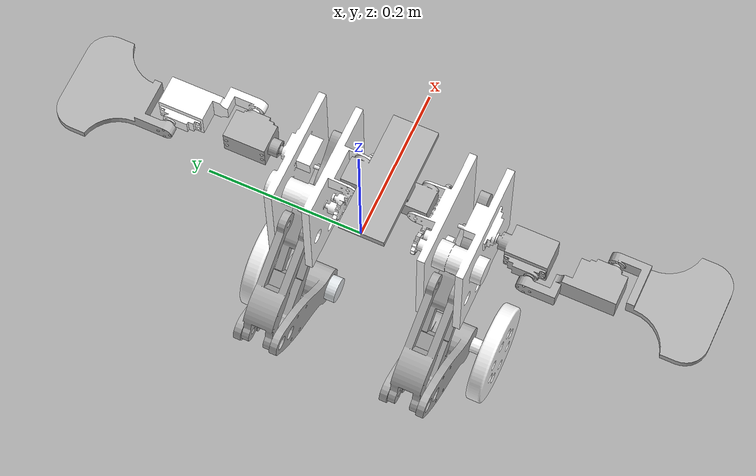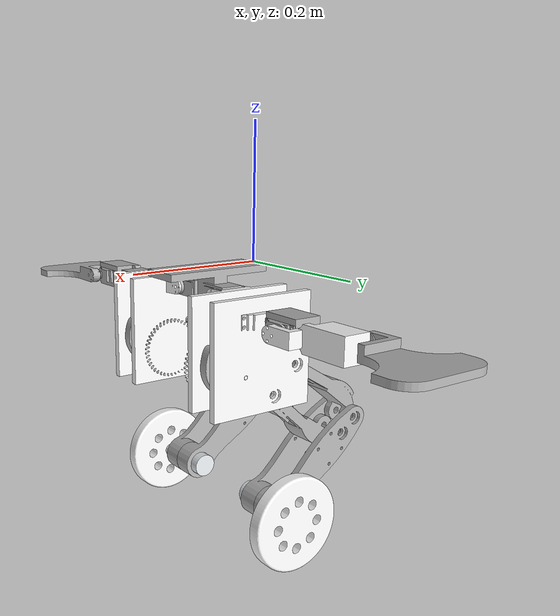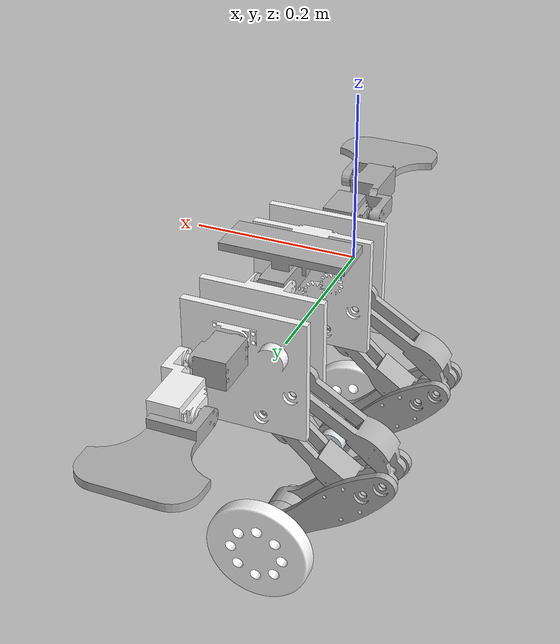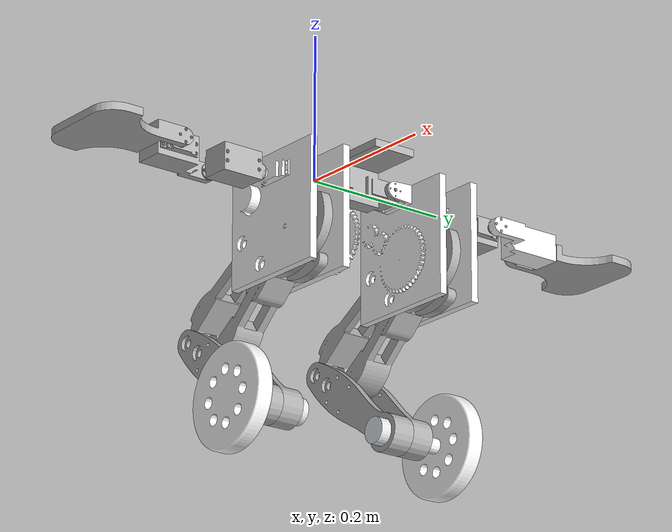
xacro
<?xml version="1.0" ?>
<robot name="jumpbot" xmlns:xacro="http://ros.org/wiki/xacro">
  <xacro:include filename="$(find jumpbot_description)/urdf/jumpbot_v9_shapes.urdf" />
  <xacro:include filename="$(find jumpbot_description)/urdf/jumpbot_v9_arm.urdf" />
  <xacro:include filename="$(find jumpbot_description)/urdf/jumpbot_v9_leg.urdf" />
  <xacro:include filename="$(find jumpbot_description)/urdf/jumpbot_v9_joint.urdf" />
  <xacro:include filename="$(find jumpbot_description)/urdf/jumpbot_v9.gazebo" />
  <xacro:include filename="$(find jumpbot_description)/urdf/jumpbot_v9.transmission" />
  <xacro:include filename="$(find jumpbot_description)/urdf/materials.xacro" />

</robot>

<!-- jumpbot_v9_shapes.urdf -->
<robot name="jumpbot" xmlns:xacro="http://ros.org/wiki/xacro">

  <link
    name="base_link">
    <inertial>
      <origin
        xyz="0.0809392415875696 -2.22044604925031E-16 -0.0268118589394716"
        rpy="0 0 0" />
      <mass
        value="0.217189619120501" />
      <inertia
        ixx="6.93999698841076E-05"
        ixy="8.1353242860039E-21"
        ixz="4.23516473926473E-21"
        iyy="0.000141175353883686"
        iyz="-2.15898040243286E-20"
        izz="0.00016267826093993" />
    </inertial>
    <visual>
      <origin
        xyz="0 0 0"
        rpy="0 0 0" />
      <geometry>
        <mesh
          filename="package://jumpbot_description/meshes/base_link.STL" />
      </geometry>
      <material
        name="">
        <color
          rgba="0.698039215686274 0.698039215686274 0.698039215686274 1" />
      </material>
    </visual>
    <collision>
      <origin
        xyz="0 0 0"
        rpy="0 0 0" />
      <geometry>
        <mesh
          filename="package://jumpbot_description/meshes/base_link.STL" />
      </geometry>
    </collision>
  </link>
  <link
    name="L_baselink">
    <inertial>
      <origin
        xyz="-0.0534108228422897 -0.0546394924013222 0.0330499597556232"
        rpy="0 0 0" />
      <mass
        value="0.573131875857881" />
      <inertia
        ixx="0.00103570883331117"
        ixy="5.37563404056151E-07"
        ixz="6.83332900437198E-07"
        iyy="0.000616026636928765"
        iyz="2.40896372789806E-06"
        izz="0.000613586353749996" />
    </inertial>
    <visual>
      <origin
        xyz="0 0 0"
        rpy="0 0 0" />
      <geometry>
        <mesh
          filename="package://jumpbot_description/meshes/L_baselink.STL" />
      </geometry>
      <material
        name="">
        <color
          rgba="1 1 1 1" />
      </material>
    </visual>
    <collision>
      <origin
        xyz="0 0 0"
        rpy="0 0 0" />
      <geometry>
        <mesh
          filename="package://jumpbot_description/meshes/L_baselink.STL" />
      </geometry>
    </collision>
  </link>
  <link
    name="L_cam">
    <inertial>
      <origin
        xyz="-0.0123671557639675 -0.00321457691695015 -0.006663149888259"
        rpy="0 0 0" />
      <mass
        value="0.021837132265196" />
      <inertia
        ixx="6.8051154353684E-06"
        ixy="3.75833765675052E-06"
        ixz="4.41665363070508E-08"
        iyy="9.48114110352577E-06"
        iyz="1.13544978473268E-08"
        izz="1.56699522980087E-05" />
    </inertial>
    <visual>
      <origin
        xyz="0 0 0"
        rpy="0 0 0" />
      <geometry>
        <mesh
          filename="package://jumpbot_description/meshes/L_cam.STL" />
      </geometry>
      <material
        name="">
        <color
          rgba="0.698039215686274 0.698039215686274 0.698039215686274 1" />
      </material>
    </visual>
    <collision>
      <origin
        xyz="0 0 0"
        rpy="0 0 0" />
      <geometry>
        <mesh
          filename="package://jumpbot_description/meshes/L_cam.STL" />
      </geometry>
    </collision>
  </link>
  <link
    name="L_motor">
    <inertial>
      <origin
        xyz="0.00416102302892774 0.00418800591150774 -0.0797766145975524"
        rpy="0 0 0" />
      <mass
        value="0.185473445257405" />
      <inertia
        ixx="9.30910309029802E-05"
        ixy="-5.27298058667433E-08"
        ixz="5.0129853674806E-07"
        iyy="9.30903492346865E-05"
        iyz="5.04549293671954E-07"
        izz="2.87226394735975E-05" />
    </inertial>
    <visual>
      <origin
        xyz="0 0 0"
        rpy="0 0 0" />
      <geometry>
        <mesh
          filename="package://jumpbot_description/meshes/L_motor.STL" />
      </geometry>
      <material
        name="">
        <color
          rgba="0.898039215686275 0.917647058823529 0.929411764705882 1" />
      </material>
    </visual>
    <collision>
      <origin
        xyz="0 0 0"
        rpy="0 0 0" />
      <geometry>
        <mesh
          filename="package://jumpbot_description/meshes/L_motor.STL" />
      </geometry>
    </collision>
  </link>
  <link
    name="L_wheel">
    <inertial>
      <origin
        xyz="4.39648317751562E-14 -2.84675061301698E-13 -0.0109262297782676"
        rpy="0 0 0" />
      <mass
        value="0.263999173137418" />
      <inertia
        ixx="0.000320342641420399"
        ixy="1.39363385881988E-19"
        ixz="-6.94397950758325E-16"
        iyy="0.000320342641420399"
        iyz="6.08514136674974E-15"
        izz="0.000616988568732304" />
    </inertial>
    <visual>
      <origin
        xyz="0 0 0"
        rpy="0 0 0" />
      <geometry>
        <mesh
          filename="package://jumpbot_description/meshes/L_wheel.STL" />
      </geometry>
      <material
        name="">
        <color
          rgba="1 1 1 1" />
      </material>
    </visual>
    <collision>
      <origin
        xyz="0 0 0"
        rpy="0 0 0" />
      <geometry>
        <mesh
          filename="package://jumpbot_description/meshes/L_wheel.STL" />
      </geometry>
    </collision>
  </link>

  <link
    name="R_baselink">
    <inertial>
      <origin
        xyz="0.0534111012007815 -0.0546259162379965 0.0330411958042715"
        rpy="0 0 0" />
      <mass
        value="0.573137658525037" />
      <inertia
        ixx="0.00103579248532628"
        ixy="-5.37742467359377E-07"
        ixz="-6.83219980106792E-07"
        iyy="0.000615652641603578"
        iyz="2.20570874301773E-06"
        izz="0.000614044097474171" />
    </inertial>
    <visual>
      <origin
        xyz="0 0 0"
        rpy="0 0 0" />
      <geometry>
        <mesh
          filename="package://jumpbot_description/meshes/R_baselink.STL" />
      </geometry>
      <material
        name="">
        <color
          rgba="1 1 1 1" />
      </material>
    </visual>
    <collision>
      <origin
        xyz="0 0 0"
        rpy="0 0 0" />
      <geometry>
        <mesh
          filename="package://jumpbot_description/meshes/R_baselink.STL" />
      </geometry>
    </collision>
  </link>
  <link
    name="R_cam">
    <inertial>
      <origin
        xyz="-0.0123671557639661 -0.00321457691694993 -0.00633667590842713"
        rpy="0 0 0" />
      <mass
        value="0.0218371322651959" />
      <inertia
        ixx="6.80443103291066E-06"
        ixy="3.75802297681279E-06"
        ixz="-4.40765446392377E-08"
        iyy="9.48117388630703E-06"
        iyz="-1.14658632301776E-08"
        izz="1.5669330246759E-05" />
    </inertial>
    <visual>
      <origin
        xyz="0 0 0"
        rpy="0 0 0" />
      <geometry>
        <mesh
          filename="package://jumpbot_description/meshes/R_cam.STL" />
      </geometry>
      <material
        name="">
        <color
          rgba="0.698039215686274 0.698039215686274 0.698039215686274 1" />
      </material>
    </visual>
    <collision>
      <origin
        xyz="0 0 0"
        rpy="0 0 0" />
      <geometry>
        <mesh
          filename="package://jumpbot_description/meshes/R_cam.STL" />
      </geometry>
    </collision>
  </link>
  <link
    name="R_motor">
    <inertial>
      <origin
        xyz="0.00416031909020936 0.00418870520018305 0.0797766145974"
        rpy="0 0 0" />
      <mass
        value="0.185473445257405" />
      <inertia
        ixx="9.30910486275977E-05"
        ixy="-5.27296883377382E-08"
        ixz="-5.01213729594481E-07"
        iyy="9.3090331510032E-05"
        iyz="-5.04633542600646E-07"
        izz="2.87226394736342E-05" />
    </inertial>
    <visual>
      <origin
        xyz="0 0 0"
        rpy="0 0 0" />
      <geometry>
        <mesh
          filename="package://jumpbot_description/meshes/R_motor.STL" />
      </geometry>
      <material
        name="">
        <color
          rgba="0.898039215686275 0.917647058823529 0.929411764705882 1" />
      </material>
    </visual>
    <collision>
      <origin
        xyz="0 0 0"
        rpy="0 0 0" />
      <geometry>
        <mesh
          filename="package://jumpbot_description/meshes/R_motor.STL" />
      </geometry>
    </collision>
  </link>
  <link
    name="R_wheel">
    <inertial>
      <origin
        xyz="-2.01505478969466E-14 1.70793934550773E-13 0.0109262297782678"
        rpy="0 0 0" />
      <mass
        value="0.263999173137418" />
      <inertia
        ixx="0.000320342641420399"
        ixy="-1.61655178777516E-19"
        ixz="-6.94631119489014E-16"
        iyy="0.000320342641420399"
        iyz="6.08535656983316E-15"
        izz="0.000616988568732304" />
    </inertial>
    <visual>
      <origin
        xyz="0 0 0"
        rpy="0 0 0" />
      <geometry>
        <mesh
          filename="package://jumpbot_description/meshes/R_wheel.STL" />
      </geometry>
      <material
        name="">
        <color
          rgba="1 1 1 1" />
      </material>
    </visual>
    <collision>
      <origin
        xyz="0 0 0"
        rpy="0 0 0" />
      <geometry>
        <mesh
          filename="package://jumpbot_description/meshes/R_wheel.STL" />
      </geometry>
    </collision>
  </link>
</robot>

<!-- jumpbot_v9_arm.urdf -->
<robot name="jumpbot" xmlns:xacro="http://ros.org/wiki/xacro">
    <link
        name="L_arm1">
        <inertial>
        <origin
            xyz="-0.00579242530675816 -0.000660568262209338 0.0392997277868803"
            rpy="0 0 0" />
        <mass
            value="0.0772344881148099" />
        <inertia
            ixx="2.1641622308835E-05"
            ixy="-4.84133079986496E-07"
            ixz="1.96292319875646E-07"
            iyy="2.58317030721296E-05"
            iyz="2.23851786821489E-08"
            izz="1.51644396371457E-05" />
        </inertial>
        <visual>
        <origin
            xyz="0 0 0"
            rpy="0 0 0" />
        <geometry>
            <mesh
            filename="package://jumpbot_description/meshes/L_arm1.STL" />
        </geometry>
        <material
            name="">
            <color
            rgba="0.698039215686274 0.698039215686274 0.698039215686274 1" />
        </material>
        </visual>
        <collision>
        <origin
            xyz="0 0 0"
            rpy="0 0 0" />
        <geometry>
            <mesh
            filename="package://jumpbot_description/meshes/L_arm1.STL" />
        </geometry>
        </collision>
    </link>
    <link
        name="L_arm2">
        <inertial>
        <origin
            xyz="0.0742096986932852 1.53568824323713E-12 -0.0293907814404099"
            rpy="0 0 0" />
        <mass
            value="0.0880266519036123" />
        <inertia
            ixx="2.12845479280635E-05"
            ixy="-6.832345567368E-16"
            ixz="1.03651693160751E-05"
            iyy="5.43768043952165E-05"
            iyz="2.14005275623767E-16"
            izz="4.55077968841721E-05" />
        </inertial>
        <visual>
        <origin
            xyz="0 0 0"
            rpy="0 0 0" />
        <geometry>
            <mesh
            filename="package://jumpbot_description/meshes/L_arm2.STL" />
        </geometry>
        <material
            name="">
            <color
            rgba="1 1 1 1" />
        </material>
        </visual>
        <collision>
        <origin
            xyz="0 0 0"
            rpy="0 0 0" />
        <geometry>
            <mesh
            filename="package://jumpbot_description/meshes/L_arm2.STL" />
        </geometry>
        </collision>
    </link>
    <link
        name="L_arm3">
        <inertial>
        <origin
            xyz="-0.0846234692097403 -0.00497008660565307 -0.014879977294088"
            rpy="0 0 0" />
        <mass
            value="0.0621671393056517" />
        <inertia
            ixx="6.26827342638435E-05"
            ixy="-3.66085857605269E-06"
            ixz="-6.94541372568381E-06"
            iyy="0.000142170205993413"
            iyz="-4.70112745709243E-07"
            izz="8.17963298452532E-05" />
        </inertial>
        <visual>
        <origin
            xyz="0 0 0"
            rpy="0 0 0" />
        <geometry>
            <mesh
            filename="package://jumpbot_description/meshes/L_arm3.STL" />
        </geometry>
        <material
            name="">
            <color
            rgba="0.698039215686274 0.698039215686274 0.698039215686274 1" />
        </material>
        </visual>
        <collision>
        <origin
            xyz="0 0 0"
            rpy="0 0 0" />
        <geometry>
            <mesh
            filename="package://jumpbot_description/meshes/L_arm3.STL" />
        </geometry>
        </collision>
    </link>
      <link
    name="R_arm1">
    <inertial>
      <origin
        xyz="0.00579242530675733 0.000660568262206673 -0.0392997277868801"
        rpy="0 0 0" />
      <mass
        value="0.07723448811481" />
      <inertia
        ixx="2.1641622308835E-05"
        ixy="-4.84133079986393E-07"
        ixz="1.96292319875674E-07"
        iyy="2.58317030721297E-05"
        iyz="2.23851786821462E-08"
        izz="1.51644396371457E-05" />
    </inertial>
    <visual>
      <origin
        xyz="0 0 0"
        rpy="0 0 0" />
      <geometry>
        <mesh
          filename="package://jumpbot_description/meshes/R_arm1.STL" />
      </geometry>
      <material
        name="">
        <color
          rgba="0.698039215686274 0.698039215686274 0.698039215686274 1" />
      </material>
    </visual>
    <collision>
      <origin
        xyz="0 0 0"
        rpy="0 0 0" />
      <geometry>
        <mesh
          filename="package://jumpbot_description/meshes/R_arm1.STL" />
      </geometry>
    </collision>
  </link>
  <link
    name="R_arm2">
    <inertial>
      <origin
        xyz="0.0742096986932864 -1.53216328513395E-12 -0.0293907814404097"
        rpy="0 0 0" />
      <mass
        value="0.0880266519036124" />
      <inertia
        ixx="2.12845479280636E-05"
        ixy="6.83248256558661E-16"
        ixz="1.03651693160751E-05"
        iyy="5.43768043952167E-05"
        iyz="-2.14006975379756E-16"
        izz="4.55077968841723E-05" />
    </inertial>
    <visual>
      <origin
        xyz="0 0 0"
        rpy="0 0 0" />
      <geometry>
        <mesh
          filename="package://jumpbot_description/meshes/R_arm2.STL" />
      </geometry>
      <material
        name="">
        <color
          rgba="0.698039215686274 0.698039215686274 0.698039215686274 1" />
      </material>
    </visual>
    <collision>
      <origin
        xyz="0 0 0"
        rpy="0 0 0" />
      <geometry>
        <mesh
          filename="package://jumpbot_description/meshes/R_arm2.STL" />
      </geometry>
    </collision>
  </link>
  <link
    name="R_arm3">
    <inertial>
      <origin
        xyz="-0.0846234692095354 -0.00497008660914752 -0.014879977294088"
        rpy="0 0 0" />
      <mass
        value="0.0621671393056517" />
      <inertia
        ixx="6.26827342641458E-05"
        ixy="-3.66085857933498E-06"
        ixz="-6.94541372566429E-06"
        iyy="0.000142170205993111"
        iyz="-4.70112745996042E-07"
        izz="8.1796329845253E-05" />
    </inertial>
    <visual>
      <origin
        xyz="0 0 0"
        rpy="0 0 0" />
      <geometry>
        <mesh
          filename="package://jumpbot_description/meshes/R_arm3.STL" />
      </geometry>
      <material
        name="">
        <color
          rgba="0.698039215686274 0.698039215686274 0.698039215686274 1" />
      </material>
    </visual>
    <collision>
      <origin
        xyz="0 0 0"
        rpy="0 0 0" />
      <geometry>
        <mesh
          filename="package://jumpbot_description/meshes/R_arm3.STL" />
      </geometry>
    </collision>
  </link>

</robot>

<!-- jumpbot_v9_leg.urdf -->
<robot name="jumpbot" xmlns:xacro="http://ros.org/wiki/xacro">
<link
    name="L_leg3">
    <inertial>
      <origin
        xyz="0.0873324965817303 0.011067795869679 -0.0100000000002772"
        rpy="0 0 0" />
      <mass
        value="0.04938529189609" />
      <inertia
        ixx="5.91254112996405E-06"
        ixy="-3.96515991620095E-06"
        ixz="9.8700864156177E-17"
        iyy="0.00010037156503426"
        iyz="5.39056562665093E-17"
        izz="0.000102535598937443" />
    </inertial>
    <visual>
      <origin
        xyz="0 0 0"
        rpy="0 0 0" />
      <geometry>
        <mesh
          filename="package://jumpbot_description/meshes/L_leg3.STL" />
      </geometry>
      <material
        name="">
        <color
          rgba="0.698039215686274 0.698039215686274 0.698039215686274 1" />
      </material>
    </visual>
    <collision>
      <origin
        xyz="0 0 0"
        rpy="0 0 0" />
      <geometry>
        <mesh
          filename="package://jumpbot_description/meshes/L_leg3.STL" />
      </geometry>
    </collision>
  </link>
  <link
    name="L_leg1_L">
    <inertial>
      <origin
        xyz="0.103256583074139 -1.25571775200228E-12 0.0524343515325116"
        rpy="0 0 0" />
      <mass
        value="0.0488233854097336" />
      <inertia
        ixx="1.13633089013212E-05"
        ixy="3.35347967113636E-16"
        ixz="8.46149636539923E-06"
        iyy="0.000183745807024676"
        iyz="-1.34330108074276E-16"
        izz="0.000190643011582041" />
    </inertial>
    <visual>
      <origin
        xyz="0 0 0"
        rpy="0 0 0" />
      <geometry>
        <mesh
          filename="package://jumpbot_description/meshes/L_leg1_L.STL" />
      </geometry>
      <material
        name="">
        <color
          rgba="0.698039215686274 0.698039215686274 0.698039215686274 1" />
      </material>
    </visual>
    <collision>
      <origin
        xyz="0 0 0"
        rpy="0 0 0" />
      <geometry>
        <mesh
          filename="package://jumpbot_description/meshes/L_leg1_L.STL" />
      </geometry>
    </collision>
  </link>
  <link
    name="L_leg2">
    <inertial>
      <origin
        xyz="0.0433566032475844 -0.013978563556407 -0.0100000000000023"
        rpy="0 0 0" />
      <mass
        value="0.0913704605771619" />
      <inertia
        ixx="1.59115847930602E-05"
        ixy="-9.15274215698794E-06"
        ixz="-1.2827298765227E-19"
        iyy="0.000107718568176025"
        iyz="-1.52577548724923E-20"
        izz="0.000115555396825785" />
    </inertial>
    <visual>
      <origin
        xyz="0 0 0"
        rpy="0 0 0" />
      <geometry>
        <mesh
          filename="package://jumpbot_description/meshes/L_leg2.STL" />
      </geometry>
      <material
        name="">
        <color
          rgba="0.698039215686274 0.698039215686274 0.698039215686274 1" />
      </material>
    </visual>
    <collision>
      <origin
        xyz="0 0 0"
        rpy="0 0 0" />
      <geometry>
        <mesh
          filename="package://jumpbot_description/meshes/L_leg2.STL" />
      </geometry>
    </collision>
  </link>
  <link
    name="L_leg1_R">
    <inertial>
      <origin
        xyz="-0.050898115814726 -0.051228173586405 -0.05190990311479"
        rpy="0 0 0" />
      <mass
        value="0.048089038126957" />
      <inertia
        ixx="9.6562281953873E-05"
        ixy="-8.44615538524824E-05"
        ixz="7.2332747463015E-06"
        iyy="9.54703992079216E-05"
        iyz="7.28018018682309E-06"
        izz="0.000187281085804032" />
    </inertial>
    <visual>
      <origin
        xyz="0 0 0"
        rpy="0 0 0" />
      <geometry>
        <mesh
          filename="package://jumpbot_description/meshes/L_leg1_R.STL" />
      </geometry>
      <material
        name="">
        <color
          rgba="0.698039215686274 0.698039215686274 0.698039215686274 1" />
      </material>
    </visual>
    <collision>
      <origin
        xyz="0 0 0"
        rpy="0 0 0" />
      <geometry>
        <mesh
          filename="package://jumpbot_description/meshes/L_leg1_R.STL" />
      </geometry>
    </collision>
  </link>
  <link
    name="R_leg3">
    <inertial>
      <origin
        xyz="0.0873324965817361 0.0110677958698842 0.00999999999999818"
        rpy="0 0 0" />
      <mass
        value="0.0493852918960901" />
      <inertia
        ixx="5.91254112993184E-06"
        ixy="-3.96515991581777E-06"
        ixz="1.57800551378829E-20"
        iyy="0.000100371565034293"
        iyz="4.39804530749343E-21"
        izz="0.000102535598937443" />
    </inertial>
    <visual>
      <origin
        xyz="0 0 0"
        rpy="0 0 0" />
      <geometry>
        <mesh
          filename="package://jumpbot_description/meshes/R_leg3.STL" />
      </geometry>
      <material
        name="">
        <color
          rgba="0.698039215686274 0.698039215686274 0.698039215686274 1" />
      </material>
    </visual>
    <collision>
      <origin
        xyz="0 0 0"
        rpy="0 0 0" />
      <geometry>
        <mesh
          filename="package://jumpbot_description/meshes/R_leg3.STL" />
      </geometry>
    </collision>
  </link>
  <link
    name="R_leg1_R">
    <inertial>
      <origin
        xyz="0.10325658361132 -5.21591525526333E-09 -0.0524343515325074"
        rpy="0 0 0" />
      <mass
        value="0.0488233854097336" />
      <inertia
        ixx="1.13633089013208E-05"
        ixy="1.05325650571395E-12"
        ixz="-8.46149636539916E-06"
        iyy="0.000183745807024675"
        iyz="5.16997275129663E-14"
        izz="0.00019064301158204" />
    </inertial>
    <visual>
      <origin
        xyz="0 0 0"
        rpy="0 0 0" />
      <geometry>
        <mesh
          filename="package://jumpbot_description/meshes/R_leg1_R.STL" />
      </geometry>
      <material
        name="">
        <color
          rgba="0.698039215686274 0.698039215686274 0.698039215686274 1" />
      </material>
    </visual>
    <collision>
      <origin
        xyz="0 0 0"
        rpy="0 0 0" />
      <geometry>
        <mesh
          filename="package://jumpbot_description/meshes/R_leg1_R.STL" />
      </geometry>
    </collision>
  </link>
  <link
    name="R_leg2">
    <inertial>
      <origin
        xyz="0.0433566032475216 -0.0139785635562044 0.0100000000000002"
        rpy="0 0 0" />
      <mass
        value="0.0913704605771619" />
      <inertia
        ixx="1.59115847929818E-05"
        ixy="-9.15274215659485E-06"
        ixz="-2.39494956007369E-20"
        iyy="0.000107718568176103"
        iyz="-2.218164219063E-20"
        izz="0.000115555396825785" />
    </inertial>
    <visual>
      <origin
        xyz="0 0 0"
        rpy="0 0 0" />
      <geometry>
        <mesh
          filename="package://jumpbot_description/meshes/R_leg2.STL" />
      </geometry>
      <material
        name="">
        <color
          rgba="0.698039215686274 0.698039215686274 0.698039215686274 1" />
      </material>
    </visual>
    <collision>
      <origin
        xyz="0 0 0"
        rpy="0 0 0" />
      <geometry>
        <mesh
          filename="package://jumpbot_description/meshes/R_leg2.STL" />
      </geometry>
    </collision>
  </link>
  <link
    name="R_leg1_L">
    <inertial>
      <origin
        xyz="-0.0508895051595862 -0.0512367273254126 -0.00809009688334644"
        rpy="0 0 0" />
      <mass
        value="0.048089038126957" />
      <inertia
        ixx="9.65906728862334E-05"
        ixy="-8.44613655679677E-05"
        ixz="-7.23205105876653E-06"
        iyy="9.54420082750328E-05"
        iyz="-7.28139577954664E-06"
        izz="0.000187281085804563" />
    </inertial>
    <visual>
      <origin
        xyz="0 0 0"
        rpy="0 0 0" />
      <geometry>
        <mesh
          filename="package://jumpbot_description/meshes/R_leg1_L.STL" />
      </geometry>
      <material
        name="">
        <color
          rgba="0.698039215686274 0.698039215686274 0.698039215686274 1" />
      </material>
    </visual>
    <collision>
      <origin
        xyz="0 0 0"
        rpy="0 0 0" />
      <geometry>
        <mesh
          filename="package://jumpbot_description/meshes/R_leg1_L.STL" />
      </geometry>
    </collision>
  </link>
</robot>

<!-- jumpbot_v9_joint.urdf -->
<robot name="jumpbot" xmlns:xacro="http://ros.org/wiki/xacro">

<joint
    name="L_baselink_joint"
    type="revolute">
    <origin
      xyz="0.1065 0.0450000000000004 -0.0330000000000008"
      rpy="1.5707963267949 0 -1.5707963267949" />
    <parent
      link="base_link" />
    <child
      link="L_baselink" />
    <axis
      xyz="0 0 1" />
    <limit
      lower="-1.5707"
      upper="1.5707"
      effort="1"
      velocity="1" />
  </joint>
  <joint
    name="L_cam_joint"
    type="continuous">
    <origin
      xyz="-0.0620000000018907 -0.0915314647309971 -0.00417000000000045"
      rpy="1.57079632679489 -1.45724685889206 -1.57079632679489" />
    <parent
      link="L_baselink" />
    <child
      link="L_cam" />
    <axis
      xyz="0 0 1" />
  </joint>

  <joint
    name="L_motor_joint"
    type="fixed">
    <origin
      xyz="-0.105722674632221 -0.106408251881274 0.0420000000019356"
      rpy="0 0 0" />
    <parent
      link="L_leg1_R" />
    <child
      link="L_motor" />
    <axis
      xyz="0 0 0" />
  </joint>
  <joint
    name="L_wheel_joint"
    type="continuous">
    <origin
      xyz="0 0 0"
      rpy="0 0 0" />
    <parent
      link="L_motor" />
    <child
      link="L_wheel" />
    <axis
      xyz="0 0 -1" />
  </joint>
  <joint
    name="L_arm1_joint"
    type="revolute">
    <origin
      xyz="-0.1025 -0.0175 0.023998"
      rpy="1.5708 -1.4572 -1.5708" />
    <parent
      link="L_baselink" />
    <child
      link="L_arm1" />
    <axis
      xyz="0 0 -1" />
    <limit effort="1" velocity="1" lower="-1.5707" upper="1.5707"/>
  </joint>
  <joint
    name="L_arm2_joint"
    type="revolute">
    <origin
      xyz="-0.03552 -0.0040507 0.05"
      rpy="0.11355 -1.5708 0" />
    <parent
      link="L_arm1" />
    <child
      link="L_arm2" />
    <axis
      xyz="0 0 -1" />
    <limit effort="1" velocity="1" lower="-1.5707" upper="1.5707"/>
  </joint>
  <joint
    name="L_arm3_joint"
    type="revolute">
    <origin
      xyz="0.0899999999999991 0 -0.0630000000000002"
      rpy="3.14159265358979 0 -3.14159265358979" />
    <parent
      link="L_arm2" />
    <child
      link="L_arm3" />
    <axis
      xyz="0 0 -1" />
    <limit effort="1" velocity="1" lower="-1.5707" upper="1.5707"/>
  </joint>
  <joint
    name="R_baselink_joint"
    type="revolute">
    <origin
      xyz="0.1065 -0.045 -0.0330000000000002"
      rpy="1.5707963267949 0 -1.5707963267949" />
    <parent
      link="base_link" />
    <child
      link="R_baselink" />
    <axis
      xyz="0 0 1" />
    <limit
      lower="-1.5707"
      upper="1.5707"
      effort="1"
      velocity="1" />
  </joint>
  <joint
    name="R_cam_joint"
    type="continuous">
    <origin
      xyz="0.0489999999981055 -0.091531464733288 -0.00416999999999973"
      rpy="1.57079632679488 -1.45724685889206 -1.57079632679488" />
    <parent
      link="R_baselink" />
    <child
      link="R_cam" />
    <axis
      xyz="0 0 1" />
  </joint>

  <joint
    name="R_motor_joint"
    type="fixed">
    <origin
      xyz="-0.1057 -0.10643 -0.102"
      rpy="0 0 0" />
    <parent
      link="R_leg1_L" />
    <child
      link="R_motor" />
    <axis
      xyz="0 0 0" />
  </joint>
  <joint
    name="R_wheel_joint"
    type="continuous">
    <origin
      xyz="0 0 0"
      rpy="0 0 0" />
    <parent
      link="R_motor" />
    <child
      link="R_wheel" />
    <axis
      xyz="0 0 1" />
  </joint>
  <joint
    name="R_arm1_joint"
    type="revolute">
    <origin
      xyz="0.1025 -0.0175 0.023998"
      rpy="1.5708 -1.4572 -1.5708" />
    <parent
      link="R_baselink" />
    <child
      link="R_arm1" />
    <axis
      xyz="0 0 1" />
    <limit effort="1" velocity="1" lower="-1.5707" upper="1.5707"/>
  </joint>

  <joint
    name="R_arm2_joint"
    type="revolute">
    <origin
      xyz="0.03552 0.0040507 -0.05"
      rpy="-0.11355 1.5708 0" />
    <parent
      link="R_arm1" />
    <child
      link="R_arm2" />
    <axis
      xyz="0 0 -1" />
    <limit effort="1" velocity="1" lower="-1.5707" upper="1.5707"/>
  </joint>

  <joint
    name="R_arm3_joint"
    type="revolute">
    <origin
      xyz="0.09 0 -0.063"
      rpy="-3.1416 0 -3.1416" />
    <parent
      link="R_arm2" />
    <child
      link="R_arm3" />
    <axis
      xyz="0 0 -1" />
    <limit effort="1" velocity="1" lower="-1.5707" upper="1.5707"/>
  </joint>

    <joint
    name="L_leg3_joint"
    type="revolute">
    <origin
      xyz="-0.0660000000018272 -0.0883531819184021 0.0824162107442846"
      rpy="1.57079632681981 -0.853930194145867 -1.57079632681554" />
    <parent
      link="L_baselink" />
    <child
      link="L_leg3" />
    <axis
      xyz="0 0 -1" />
    <limit
      lower="-3.141592"
      upper="3.141592"
      effort="-1"
      velocity="-1" />
  </joint>
  <joint
    name="L_leg1_L_joint"
    type="revolute">
    <origin
      xyz="0.150000000000081 0 -0.040000000000003"
      rpy="0 0 -1.74964597766658" />
    <parent
      link="L_leg3" />
    <child
      link="L_leg1_L" />
    <axis
      xyz="0 0 -1" />
    <limit
      lower="-3.141592"
      upper="3.141592"
      effort="-1"
      velocity="-1" />
    <dynamics
      spring_stiffness="0"
      spring_reference="0"
      damping="-1"
      friction="-1"/>

  </joint>
  <joint
    name="L_leg2_joint"
    type="revolute">
    <origin
      xyz="-0.0660000000025969 -0.1254831819183 0.0453000000002221"
      rpy="1.57079632679489 -1.00689911983256 -1.57079632681554" />
    <parent
      link="L_baselink" />
    <child
      link="L_leg2" />
    <axis
      xyz="0 0 1" />
    <limit
      lower="-3.141592"
      upper="3.141592"
      effort="-1"
      velocity="-1" />
  </joint>
  <joint
    name="L_leg1_R_joint"
    type="revolute">
    <origin
      xyz="0.15000000000002 0 0.0199999999999946"
      rpy="0 0 0.450347739059501" />
    <parent
      link="L_leg2" />
    <child
      link="L_leg1_R" />
    <axis
      xyz="0 0 1" />
    <limit
      lower="-3.141592"
      upper="3.141592"
      effort="-1"
      velocity="-1" />
  </joint>

  <joint
    name="R_leg3_joint"
    type="revolute">
    <origin
      xyz="0.065999999998173 -0.0883531819214337 0.0824162107440945"
      rpy="1.5707963267949 -0.853721604418042 -1.57079632681554" />
    <parent
      link="R_baselink" />
    <child
      link="R_leg3" />
    <axis
      xyz="0 0 -1" />
    <limit
      lower="-3.141592"
      upper="3.141592"
      effort="-1"
      velocity="-1" />
  </joint>
  <joint
    name="R_leg1_R_joint"
    type="revolute">
    <origin
      xyz="0.150000004607446 0 0.039999999999998"
      rpy="0 0 -1.74926931149431" />
    <parent
      link="R_leg3" />
    <child
      link="R_leg1_R" />
    <axis
      xyz="0 0 -1" />
    <limit
      lower="-3.141592"
      upper="3.141592"
      effort="-1"
      velocity="-1" />
    <dynamics
      spring_stiffness="0"
      spring_reference="0"
      damping="-1"
      friction="-1"/>

  </joint>
  <joint
    name="R_leg2_joint"
    type="revolute">
    <origin
      xyz="0.0659999999974047 -0.125483181921434 0.0453000000000003"
      rpy="1.57079632679489 -1.00668202156475 -1.57079632681554" />
    <parent
      link="R_baselink" />
    <child
      link="R_leg2" />
    <axis
      xyz="0 0 1" />
    <limit
      lower="-3.141592"
      upper="3.141592"
      effort="-1"
      velocity="-1" />
  </joint>
  <joint
    name="R_leg1_L_joint"
    type="revolute">
    <origin
      xyz="0.149999999999984 0 0.0399999999999999"
      rpy="0 0 0.450564837327306" />
    <parent
      link="R_leg2" />
    <child
      link="R_leg1_L" />
    <axis
      xyz="0 0 1" />
    <limit
      lower="-3.141592"
      upper="3.141592"
      effort="-1"
      velocity="-1" />
  </joint>

</robot>
